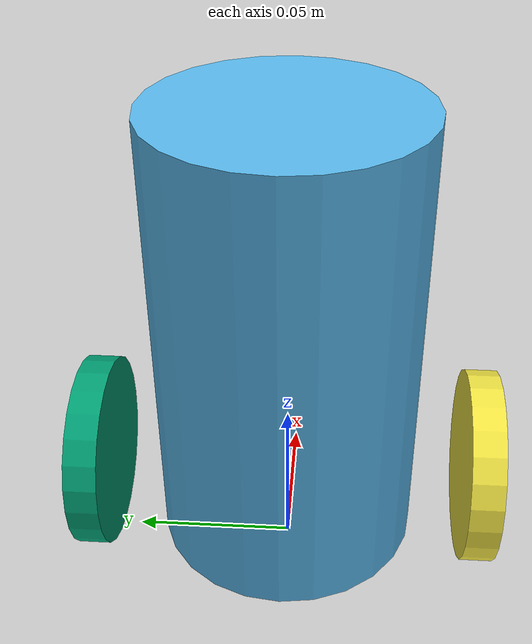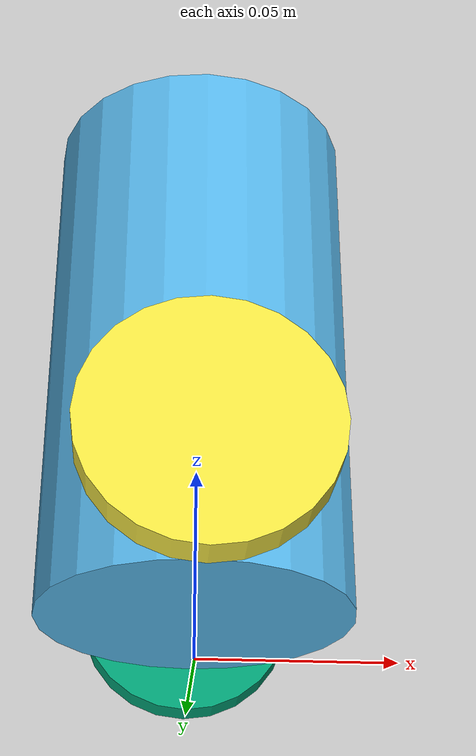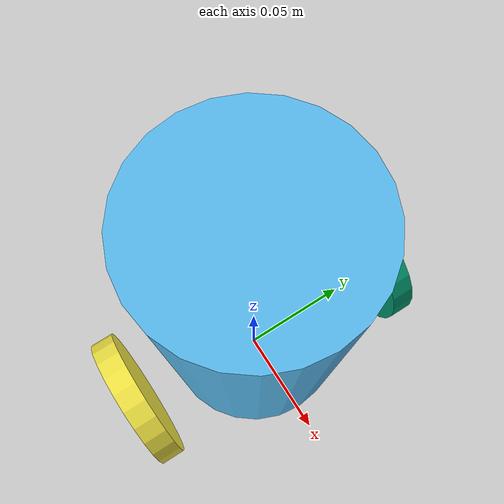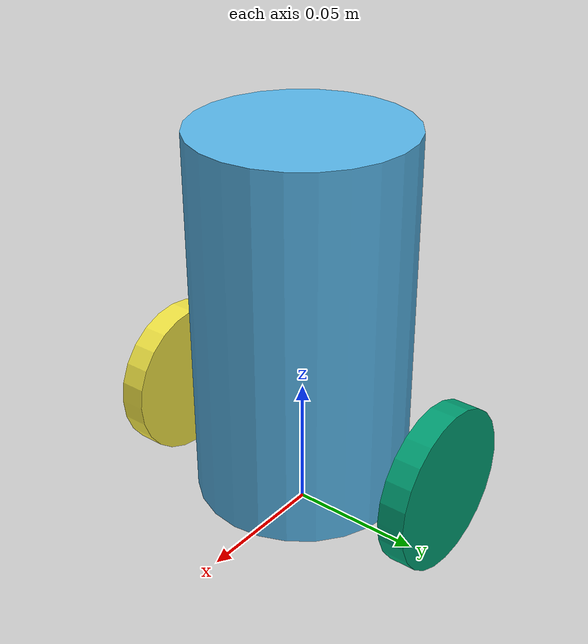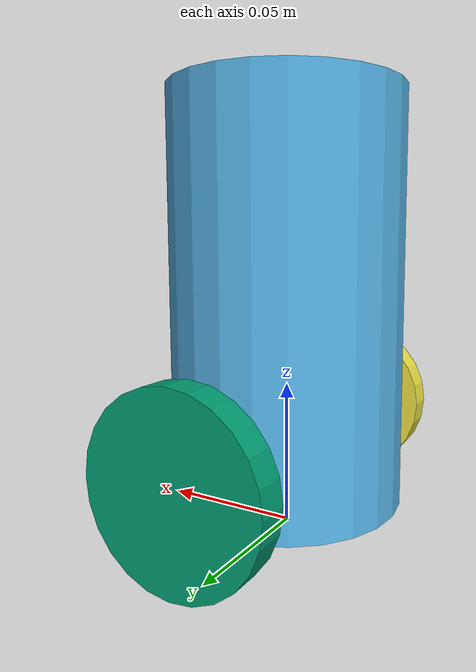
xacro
<?xml version="1.0" ?>
<robot name="turtlebot3_burger" xmlns:xacro="http://ros.org/wiki/xacro">
  <link name="base_footprint"/>
  <joint name="base_joint" type="fixed"><parent link="base_footprint"/><child link="base_link"/><origin xyz="0 0 0.01" rpy="0 0 0"/></joint>
  <link name="base_link">
    <visual><origin xyz="0 0 0.07" rpy="0 0 0"/><geometry><cylinder length="0.14" radius="0.04"/></geometry></visual>
    <collision><origin xyz="0 0 0.07" rpy="0 0 0"/><geometry><cylinder length="0.14" radius="0.04"/></geometry></collision>
    <inertial><origin xyz="0 0 0.01" rpy="0 0 0"/><mass value="2.0"/><inertia ixx="0.1" ixy="0" ixz="0" iyy="0.1" iyz="0" izz="0.1"/></inertial>
  </link>
  <joint name="l_wheel_joint" type="continuous"><parent link="base_link"/><child link="l_link"/><origin xyz="0 0.06 0.023" rpy="-1.57 0 0"/><axis xyz="0 0 1"/></joint>
  <link name="l_link"><visual><geometry><cylinder length="0.01" radius="0.03"/></geometry></visual><collision><geometry><cylinder length="0.01" radius="0.03"/></geometry></collision><inertial><mass value="0.1"/><inertia ixx="1e-4" ixy="0" ixz="0" iyy="1e-4" iyz="0" izz="1e-4"/></inertial></link>
  <joint name="r_wheel_joint" type="continuous"><parent link="base_link"/><child link="r_link"/><origin xyz="0 -0.06 0.023" rpy="-1.57 0 0"/><axis xyz="0 0 1"/></joint>
  <link name="r_link"><visual><geometry><cylinder length="0.01" radius="0.03"/></geometry></visual><collision><geometry><cylinder length="0.01" radius="0.03"/></geometry></collision><inertial><mass value="0.1"/><inertia ixx="1e-4" ixy="0" ixz="0" iyy="1e-4" iyz="0" izz="1e-4"/></inertial></link>
  <gazebo><plugin name="diff_drive" filename="libgazebo_ros_diff_drive.so"><commandTopic>cmd_vel</commandTopic><odometryTopic>odom</odometryTopic><odometryFrame>odom</odometryFrame><robotBaseFrame>base_footprint</robotBaseFrame><publishWheelTF>false</publishWheelTF><publishTf>true</publishTf><updateRate>30</updateRate><leftJoint>l_wheel_joint</leftJoint><rightJoint>r_wheel_joint</rightJoint><wheelSeparation>0.12</wheelSeparation><wheelDiameter>0.066</wheelDiameter><wheelAcceleration>1</wheelAcceleration><wheelTorque>20</wheelTorque></plugin></gazebo>
</robot>
